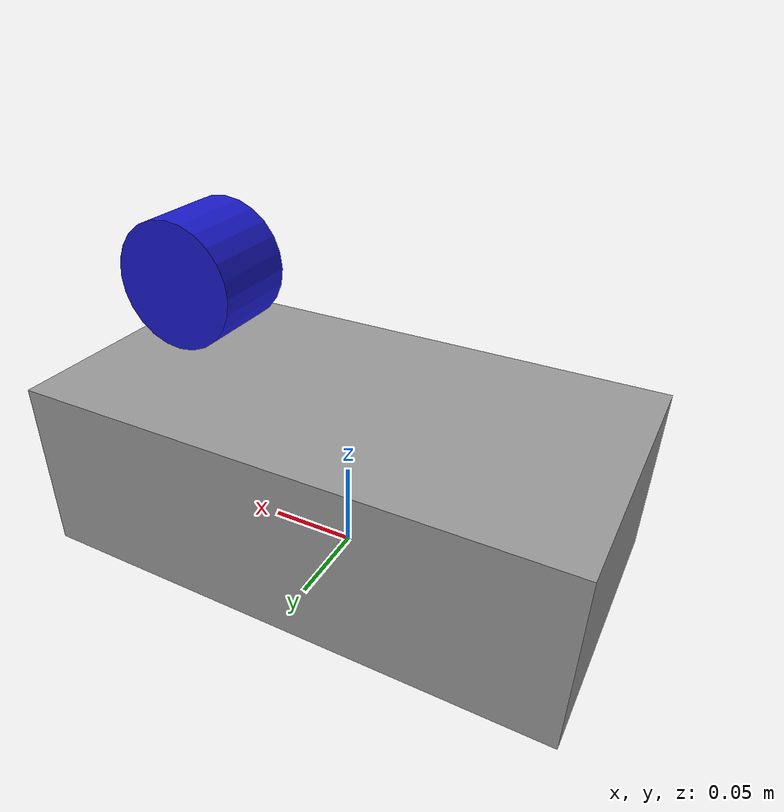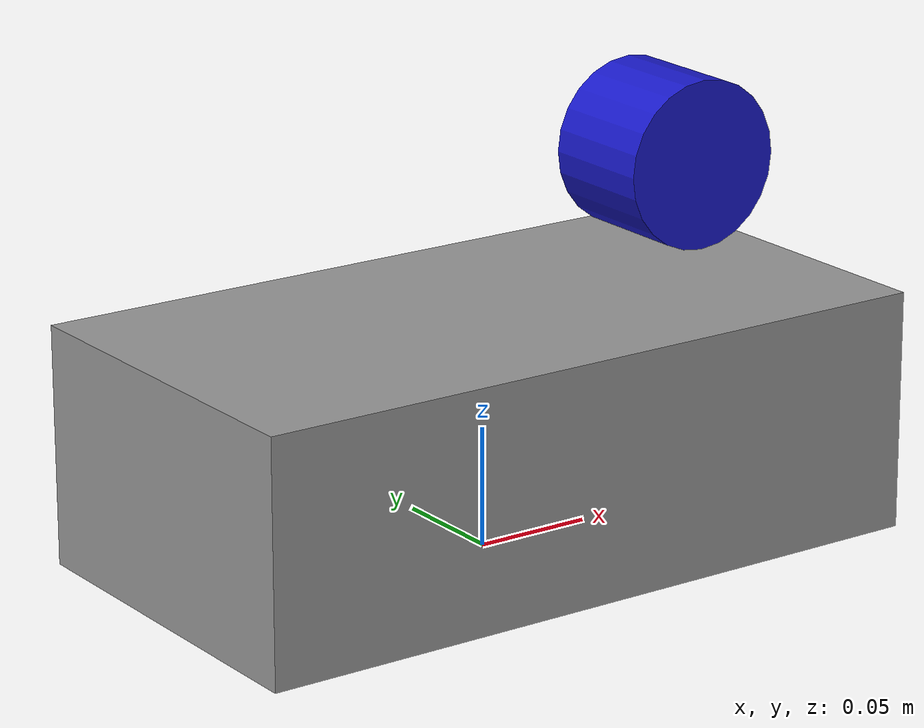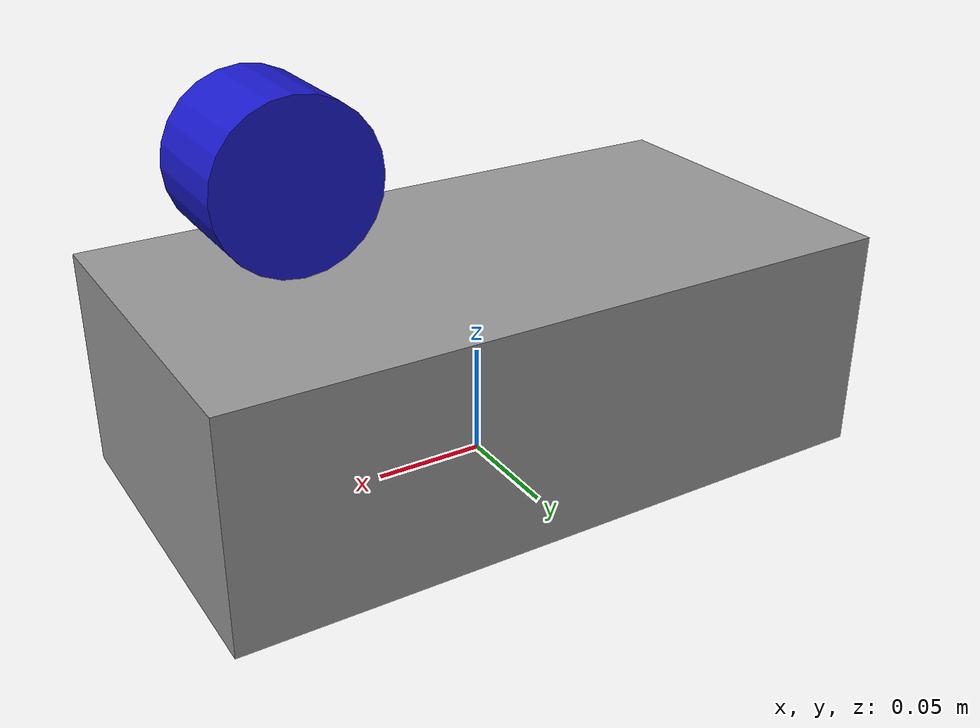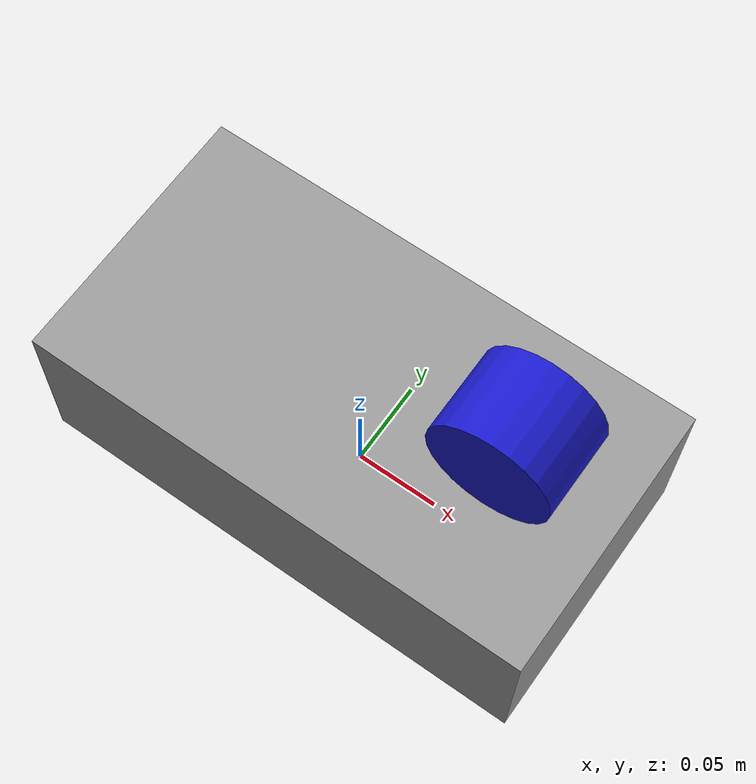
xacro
<?xml version="1.0"?>
<robot xmlns:xacro="http://www.ros.org/wiki/xacro" name="my_robot">

  <!-- Base footprint (2D frame on the ground) -->
  <link name="base_footprint"/>

  <!-- Base link (box) -->
  <link name="base_link">
    <visual>
      <geometry>
        <!-- length x, width y, height z -->
        <box size="0.30 0.16 0.10"/>
      </geometry>
      <origin xyz="0 0 0.05" rpy="0 0 0"/>
      <material name="grey">
        <color rgba="0.6 0.6 0.6 1.0"/>
      </material>
    </visual>
    <collision>
      <geometry>
        <box size="0.30 0.16 0.10"/>
      </geometry>
      <origin xyz="0 0 0.05" rpy="0 0 0"/>
    </collision>
    <inertial>
      <mass value="2.0"/>
      <origin xyz="0 0 0.05" rpy="0 0 0"/>
      <inertia
        ixx="0.01" ixy="0.0" ixz="0.0"
        iyy="0.01" iyz="0.0"
        izz="0.02"/>
    </inertial>
  </link>

  <!-- base_footprint -> base_link (static, small z offset) -->
  <joint name="base_footprint_to_base_link" type="fixed">
    <parent link="base_footprint"/>
    <child link="base_link"/>
    <origin xyz="0 0 0" rpy="0 0 0"/>
  </joint>

  <!-- Lidar link-->
  <link name="lidar_link">
    <visual>
      <geometry>
        <cylinder radius="0.035" length="0.05"/>
      </geometry>
      <origin xyz="0 0 0.10" rpy="1.5708 0 0"/>
      <material name="blue">
        <color rgba="0.1 0.1 0.8 1.0"/>
      </material>
    </visual>
  </link>

  <!-- base_link -> lidar_link -->
  <joint name="base_link_to_lidar" type="fixed">
    <!-- x=0.09 so lidar is 6cm behind the front edge -->
    <parent link="base_link"/>
    <child link="lidar_link"/>
    <origin xyz="0.09 0 0.05" rpy="0 0 0"/>
  </joint>

</robot>
